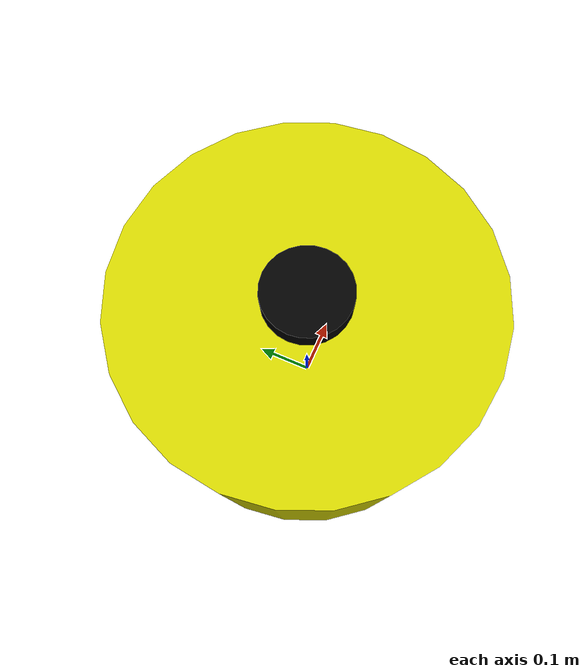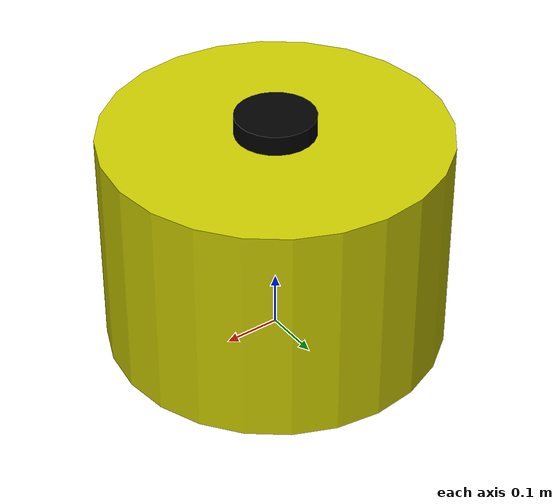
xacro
<?xml version="1.0"?>
<robot name="omni_cylinder_robot">

  <!-- Base body link: cylinder -->
  <link name="base_link">
    <visual>
      <origin xyz="0 0 0.2" rpy="0 0 0"/>
      <geometry>
        <cylinder radius="0.3" length="0.4"/>
      </geometry>
      <material name="base_material">
        <color rgba="0.8 0.8 0 1"/>
      </material>
    </visual>
    <collision>
      <origin xyz="0 0 0.2" rpy="0 0 0"/>
      <geometry>
        <cylinder radius="0.3" length="0.4"/>
      </geometry>
    </collision>
    <inertial>
      <origin xyz="0 0 0.2" rpy="0 0 0"/>
      <mass value="5.0"/>
      <inertia ixx="0.1" ixy="0.0" ixz="0.0"
               iyy="0.1" iyz="0.0"
               izz="0.1"/>
    </inertial>
  </link>

  <!-- Lidar sensor link -->
  <link name="laser">
    <visual>
      <origin xyz="0 0 0" rpy="0 0 0"/>
      <geometry>
        <cylinder radius="0.07" length="0.07"/>
      </geometry>
      <material name="laser_material">
        <color rgba="0 0 0 1"/>
      </material>
    </visual>
    <collision>
      <origin xyz="0 0 0" rpy="0 0 0"/>
      <geometry>
        <cylinder radius="0.07" length="0.07"/>
      </geometry>
    </collision>
    <inertial>
      <origin xyz="0 0 0" rpy="0 0 0"/>
      <mass value="0.5"/>
      <inertia ixx="0.001" ixy="0.0" ixz="0.0"
               iyy="0.001" iyz="0.0"
               izz="0.001"/>
    </inertial>
  </link>

  <joint name="lidar_joint" type="fixed">
    <parent link="base_link"/>
    <child link="laser"/>
    <!-- Mounted centrally on top: z = 0.4 (base length) -->
    <origin xyz="0 0 0.4" rpy="0 0 0"/>
  </joint>

  <!-- Lidar sensor link -->
  <link name="imu_link">
    <visual>
      <origin xyz="0 0 0" rpy="0 0 0"/>
      <geometry>
        <cylinder radius="0.07" length="0.07"/>
      </geometry>
      <material name="imu_material">
        <color rgba="0 0 0 1"/>
      </material>
    </visual>
    <collision>
      <origin xyz="0 0 0" rpy="0 0 0"/>
      <geometry>
        <cylinder radius="0.07" length="0.07"/>
      </geometry>
    </collision>
    <inertial>
      <origin xyz="0 0 0" rpy="0 0 0"/>
      <mass value="0.5"/>
      <inertia ixx="0.001" ixy="0.0" ixz="0.0"
               iyy="0.001" iyz="0.0"
               izz="0.001"/>
    </inertial>
  </link>

  <joint name="imu_joint" type="fixed">
    <parent link="base_link"/>
    <child link="imu_link"/>
    <!-- Mounted centrally on top: z = 0.4 (base length) -->
    <origin xyz="0 0 0.4" rpy="0 0 0"/>
  </joint>
</robot>
